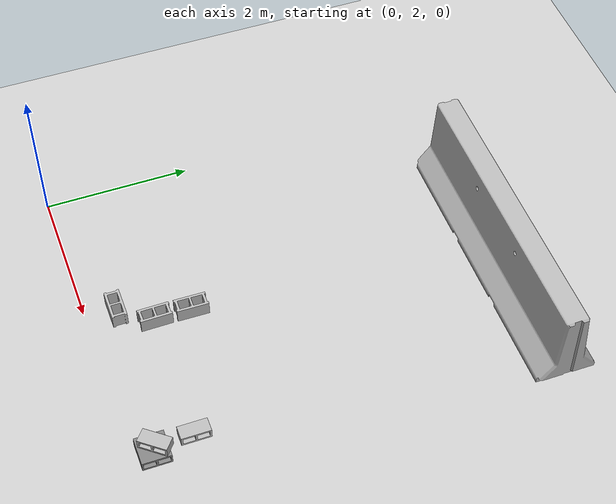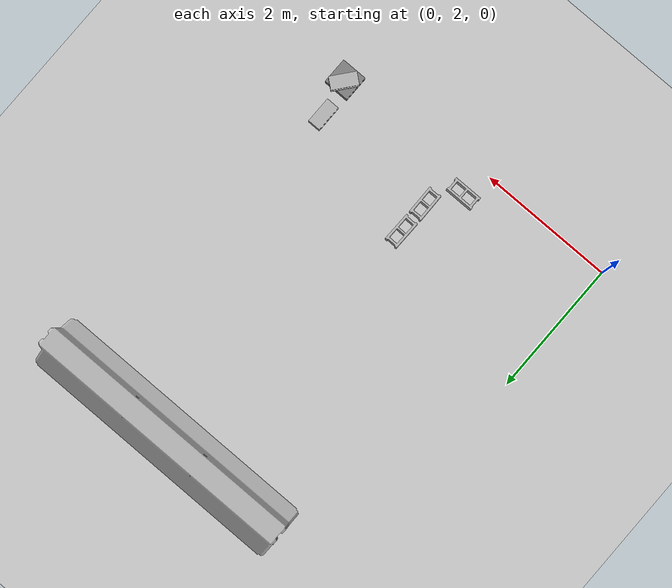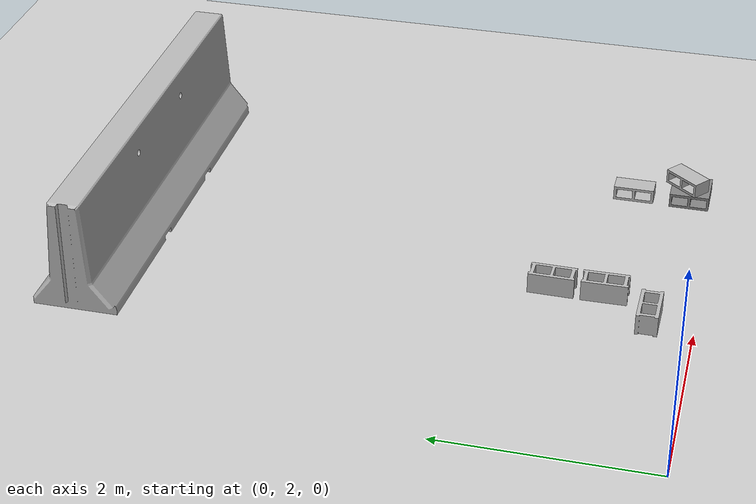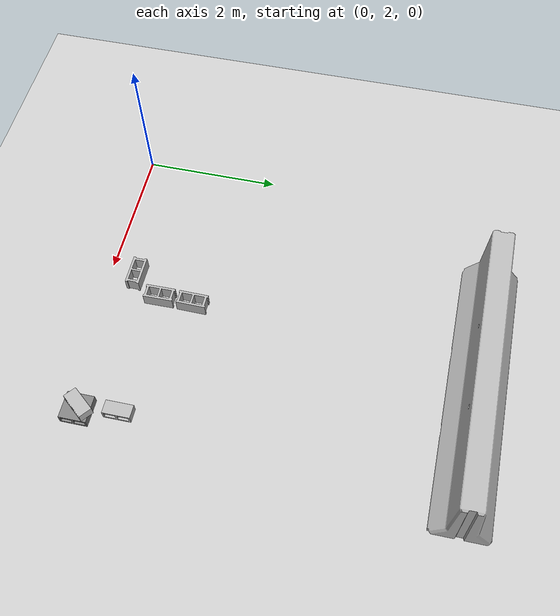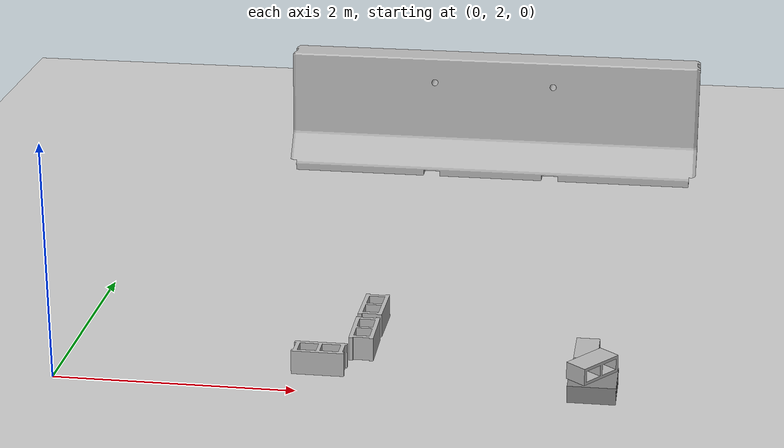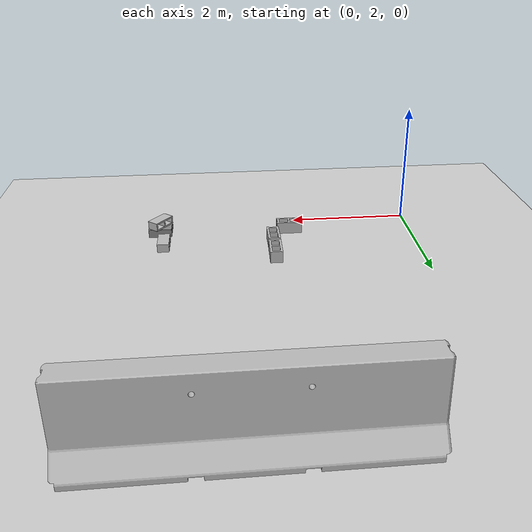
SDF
<sdf version="1.6">
 <world name="default">
  <model name="ground_plane">
   <static>1</static>
   <link name="link">
    <collision name="collision">
     <geometry><plane><normal>0 0 1</normal><size>100 100</size></plane></geometry>
     <surface>
      <contact><collide_bitmask>65535</collide_bitmask></contact>
      <friction><ode><mu>100</mu><mu2>50</mu2></ode></friction>
     </surface>
    </collision>
    <visual name="visual">
     <cast_shadows>0</cast_shadows>
     <geometry><plane><normal>0 0 1</normal><size>100 100</size></plane></geometry>
     <material>
      <script><uri>file://media/materials/scripts/gazebo.material</uri><name>Gazebo/Grey</name></script>
     </material>
    </visual>
   </link>
  </model>
  <model name="cinder_block">
   <link name="link">
    <inertial>
     <pose>0 0 0.1016 0 -0 0</pose>
     <mass>5</mass>
     <inertia>
      <ixx>0.028705</ixx>
      <ixy>0</ixy>
      <iyy>0.073708</iyy>
      <ixz>0</ixz>
      <iyz>0</iyz>
      <izz>0.06908</izz>
     </inertia>
    </inertial>
    <visual name="visual">
     <geometry><mesh><uri>model://cinder_block/meshes/cinder_block.dae</uri></mesh></geometry>
    </visual>
    <collision name="left">
     <pose>0 -0.08465 0.1016 0 -0 0</pose>
     <geometry><box><size>0.43495 0.0339 0.2032</size></box></geometry>
     <surface>
      <contact><ode><max_vel>0.1</max_vel><min_depth>0.001</min_depth></ode></contact>
      <friction><ode><mu>1</mu><mu2>1</mu2></ode></friction>
     </surface>
    </collision>
    <collision name="right">
     <pose>0 0.08465 0.1016 0 -0 0</pose>
     <geometry><box><size>0.43495 0.0339 0.2032</size></box></geometry>
     <surface>
      <contact><ode><max_vel>0.1</max_vel><min_depth>0.001</min_depth></ode></contact>
      <friction><ode><mu>1</mu><mu2>1</mu2></ode></friction>
     </surface>
    </collision>
    <collision name="front">
     <pose>0.18625 0 0.1016 0 -0 0</pose>
     <geometry><box><size>0.0339 0.1354 0.203</size></box></geometry>
     <surface>
      <contact><ode><max_vel>0.1</max_vel><min_depth>0.001</min_depth></ode></contact>
      <friction><ode><mu>1</mu><mu2>1</mu2></ode></friction>
     </surface>
    </collision>
    <collision name="middle">
     <pose>0 0 0.1016 0 -0 0</pose>
     <geometry><box><size>0.0339 0.1354 0.203</size></box></geometry>
     <surface>
      <contact><ode><max_vel>0.1</max_vel><min_depth>0.001</min_depth></ode></contact>
      <friction><ode><mu>1</mu><mu2>1</mu2></ode></friction>
     </surface>
    </collision>
    <collision name="back">
     <pose>-0.18625 0 0.1016 0 -0 0</pose>
     <geometry><box><size>0.0339 0.1354 0.203</size></box></geometry>
     <surface>
      <contact><ode><max_vel>0.1</max_vel><min_depth>0.001</min_depth></ode></contact>
      <friction><ode><mu>1</mu><mu2>1</mu2></ode></friction>
     </surface>
    </collision>
   </link>
   <pose>2.12256 2.41856 -1.2e-05 2.2e-05 2e-06 0</pose>
  </model>
  <model name="cinder_block_4">
   <link name="link">
    <inertial>
     <pose>0 0 0.1016 0 -0 0</pose>
     <mass>5</mass>
     <inertia>
      <ixx>0.028705</ixx>
      <ixy>0</ixy>
      <iyy>0.073708</iyy>
      <ixz>0</ixz>
      <iyz>0</iyz>
      <izz>0.06908</izz>
     </inertia>
    </inertial>
    <visual name="visual">
     <geometry><mesh><uri>model://cinder_block/meshes/cinder_block.dae</uri></mesh></geometry>
    </visual>
    <collision name="left">
     <pose>0 -0.08465 0.1016 0 -0 0</pose>
     <geometry><box><size>0.43495 0.0339 0.2032</size></box></geometry>
     <surface>
      <contact><ode><max_vel>0.1</max_vel><min_depth>0.001</min_depth></ode></contact>
      <friction><ode><mu>1</mu><mu2>1</mu2></ode></friction>
     </surface>
    </collision>
    <collision name="right">
     <pose>0 0.08465 0.1016 0 -0 0</pose>
     <geometry><box><size>0.43495 0.0339 0.2032</size></box></geometry>
     <surface>
      <contact><ode><max_vel>0.1</max_vel><min_depth>0.001</min_depth></ode></contact>
      <friction><ode><mu>1</mu><mu2>1</mu2></ode></friction>
     </surface>
    </collision>
    <collision name="front">
     <pose>0.18625 0 0.1016 0 -0 0</pose>
     <geometry><box><size>0.0339 0.1354 0.203</size></box></geometry>
     <surface>
      <contact><ode><max_vel>0.1</max_vel><min_depth>0.001</min_depth></ode></contact>
      <friction><ode><mu>1</mu><mu2>1</mu2></ode></friction>
     </surface>
    </collision>
    <collision name="middle">
     <pose>0 0 0.1016 0 -0 0</pose>
     <geometry><box><size>0.0339 0.1354 0.203</size></box></geometry>
     <surface>
      <contact><ode><max_vel>0.1</max_vel><min_depth>0.001</min_depth></ode></contact>
      <friction><ode><mu>1</mu><mu2>1</mu2></ode></friction>
     </surface>
    </collision>
    <collision name="back">
     <pose>-0.18625 0 0.1016 0 -0 0</pose>
     <geometry><box><size>0.0339 0.1354 0.203</size></box></geometry>
     <surface>
      <contact><ode><max_vel>0.1</max_vel><min_depth>0.001</min_depth></ode></contact>
      <friction><ode><mu>1</mu><mu2>1</mu2></ode></friction>
     </surface>
    </collision>
   </link>
   <pose>2.42783 2.86197 -6e-06 5.1e-05 4e-06 1.58286</pose>
  </model>
  <model name="cinder_block_6">
   <link name="link">
    <inertial>
     <pose>0 0 0.1016 0 -0 0</pose>
     <mass>5</mass>
     <inertia>
      <ixx>0.028705</ixx>
      <ixy>0</ixy>
      <iyy>0.073708</iyy>
      <ixz>0</ixz>
      <iyz>0</iyz>
      <izz>0.06908</izz>
     </inertia>
    </inertial>
    <visual name="visual">
     <geometry><mesh><uri>model://cinder_block/meshes/cinder_block.dae</uri></mesh></geometry>
    </visual>
    <collision name="left">
     <pose>0 -0.08465 0.1016 0 -0 0</pose>
     <geometry><box><size>0.43495 0.0339 0.2032</size></box></geometry>
     <surface>
      <contact><ode><max_vel>0.1</max_vel><min_depth>0.001</min_depth></ode></contact>
      <friction><ode><mu>1</mu><mu2>1</mu2></ode></friction>
     </surface>
    </collision>
    <collision name="right">
     <pose>0 0.08465 0.1016 0 -0 0</pose>
     <geometry><box><size>0.43495 0.0339 0.2032</size></box></geometry>
     <surface>
      <contact><ode><max_vel>0.1</max_vel><min_depth>0.001</min_depth></ode></contact>
      <friction><ode><mu>1</mu><mu2>1</mu2></ode></friction>
     </surface>
    </collision>
    <collision name="front">
     <pose>0.18625 0 0.1016 0 -0 0</pose>
     <geometry><box><size>0.0339 0.1354 0.203</size></box></geometry>
     <surface>
      <contact><ode><max_vel>0.1</max_vel><min_depth>0.001</min_depth></ode></contact>
      <friction><ode><mu>1</mu><mu2>1</mu2></ode></friction>
     </surface>
    </collision>
    <collision name="middle">
     <pose>0 0 0.1016 0 -0 0</pose>
     <geometry><box><size>0.0339 0.1354 0.203</size></box></geometry>
     <surface>
      <contact><ode><max_vel>0.1</max_vel><min_depth>0.001</min_depth></ode></contact>
      <friction><ode><mu>1</mu><mu2>1</mu2></ode></friction>
     </surface>
    </collision>
    <collision name="back">
     <pose>-0.18625 0 0.1016 0 -0 0</pose>
     <geometry><box><size>0.0339 0.1354 0.203</size></box></geometry>
     <surface>
      <contact><ode><max_vel>0.1</max_vel><min_depth>0.001</min_depth></ode></contact>
      <friction><ode><mu>1</mu><mu2>1</mu2></ode></friction>
     </surface>
    </collision>
   </link>
   <pose>2.43138 3.356 -6e-06 5.1e-05 4e-06 1.55629</pose>
  </model>
  <model name="cinder_block_2_static">
   <link name="link">
    <inertial>
     <pose>0 0 0.071438 0 -0 0</pose>
     <mass>5</mass>
     <inertia>
      <ixx>0.06908</ixx>
      <ixy>0</ixy>
      <iyy>0.028705</iyy>
      <ixz>0</ixz>
      <iyz>0</iyz>
      <izz>0.073708</izz>
     </inertia>
    </inertial>
    <visual name="visual">
     <geometry><mesh><uri>model://cinder_block_2/meshes/cinder_block.dae</uri></mesh></geometry>
    </visual>
    <collision name="top">
     <pose>0 0 0.130175 0 -0 0</pose>
     <geometry><box><size>0.19368 0.396875 0.0254</size></box></geometry>
     <surface>
      <friction>
       <ode><mu>1</mu><mu2>1</mu2><fdir1>0 0 0</fdir1><slip1>0</slip1><slip2>0</slip2></ode>
       <torsional>
        <coefficient>1</coefficient>
        <patch_radius>0</patch_radius>
        <surface_radius>0</surface_radius>
        <use_patch_radius>1</use_patch_radius>
        <ode><slip>0</slip></ode>
       </torsional>
      </friction>
      <bounce><restitution_coefficient>0</restitution_coefficient><threshold>1e+06</threshold></bounce>
      <contact>
       <collide_without_contact>0</collide_without_contact>
       <collide_without_contact_bitmask>1</collide_without_contact_bitmask>
       <collide_bitmask>1</collide_bitmask>
       <ode>
        <soft_cfm>0</soft_cfm>
        <soft_erp>0.2</soft_erp>
        <kp>1e+13</kp>
        <kd>1</kd>
        <max_vel>0.1</max_vel>
        <min_depth>0.001</min_depth>
       </ode>
       <bullet>
        <split_impulse>1</split_impulse>
        <split_impulse_penetration_threshold>-0.01</split_impulse_penetration_threshold>
        <soft_cfm>0</soft_cfm>
        <soft_erp>0.2</soft_erp>
        <kp>1e+13</kp>
        <kd>1</kd>
       </bullet>
      </contact>
     </surface>
    </collision>
    <collision name="bottom">
     <pose>0 0 0.0127 0 -0 0</pose>
     <geometry><box><size>0.19368 0.396875 0.0254</size></box></geometry>
     <surface>
      <friction>
       <ode><mu>1</mu><mu2>1</mu2><fdir1>0 0 0</fdir1><slip1>0</slip1><slip2>0</slip2></ode>
       <torsional>
        <coefficient>1</coefficient>
        <patch_radius>0</patch_radius>
        <surface_radius>0</surface_radius>
        <use_patch_radius>1</use_patch_radius>
        <ode><slip>0</slip></ode>
       </torsional>
      </friction>
      <bounce><restitution_coefficient>0</restitution_coefficient><threshold>1e+06</threshold></bounce>
      <contact>
       <collide_without_contact>0</collide_without_contact>
       <collide_without_contact_bitmask>1</collide_without_contact_bitmask>
       <collide_bitmask>1</collide_bitmask>
       <ode>
        <soft_cfm>0</soft_cfm>
        <soft_erp>0.2</soft_erp>
        <kp>1e+13</kp>
        <kd>1</kd>
        <max_vel>0.1</max_vel>
        <min_depth>0.001</min_depth>
       </ode>
       <bullet>
        <split_impulse>1</split_impulse>
        <split_impulse_penetration_threshold>-0.01</split_impulse_penetration_threshold>
        <soft_cfm>0</soft_cfm>
        <soft_erp>0.2</soft_erp>
        <kp>1e+13</kp>
        <kd>1</kd>
       </bullet>
      </contact>
     </surface>
    </collision>
    <collision name="left">
     <pose>0 -0.185738 0.071438 0 -0 0</pose>
     <geometry><box><size>0.19368 0.0254 0.092075</size></box></geometry>
     <surface>
      <friction>
       <ode><mu>1</mu><mu2>1</mu2><fdir1>0 0 0</fdir1><slip1>0</slip1><slip2>0</slip2></ode>
       <torsional>
        <coefficient>1</coefficient>
        <patch_radius>0</patch_radius>
        <surface_radius>0</surface_radius>
        <use_patch_radius>1</use_patch_radius>
        <ode><slip>0</slip></ode>
       </torsional>
      </friction>
      <bounce><restitution_coefficient>0</restitution_coefficient><threshold>1e+06</threshold></bounce>
      <contact>
       <collide_without_contact>0</collide_without_contact>
       <collide_without_contact_bitmask>1</collide_without_contact_bitmask>
       <collide_bitmask>1</collide_bitmask>
       <ode>
        <soft_cfm>0</soft_cfm>
        <soft_erp>0.2</soft_erp>
        <kp>1e+13</kp>
        <kd>1</kd>
        <max_vel>0.1</max_vel>
        <min_depth>0.001</min_depth>
       </ode>
       <bullet>
        <split_impulse>1</split_impulse>
        <split_impulse_penetration_threshold>-0.01</split_impulse_penetration_threshold>
        <soft_cfm>0</soft_cfm>
        <soft_erp>0.2</soft_erp>
        <kp>1e+13</kp>
        <kd>1</kd>
       </bullet>
      </contact>
     </surface>
    </collision>
    <collision name="middle">
     <pose>0 0 0.071438 0 -0 0</pose>
     <geometry><box><size>0.19368 0.0254 0.092075</size></box></geometry>
     <surface>
      <friction>
       <ode><mu>1</mu><mu2>1</mu2><fdir1>0 0 0</fdir1><slip1>0</slip1><slip2>0</slip2></ode>
       <torsional>
        <coefficient>1</coefficient>
        <patch_radius>0</patch_radius>
        <surface_radius>0</surface_radius>
        <use_patch_radius>1</use_patch_radius>
        <ode><slip>0</slip></ode>
       </torsional>
      </friction>
      <bounce><restitution_coefficient>0</restitution_coefficient><threshold>1e+06</threshold></bounce>
      <contact>
       <collide_without_contact>0</collide_without_contact>
       <collide_without_contact_bitmask>1</collide_without_contact_bitmask>
       <collide_bitmask>1</collide_bitmask>
       <ode>
        <soft_cfm>0</soft_cfm>
        <soft_erp>0.2</soft_erp>
        <kp>1e+13</kp>
        <kd>1</kd>
        <max_vel>0.1</max_vel>
        <min_depth>0.001</min_depth>
       </ode>
       <bullet>
        <split_impulse>1</split_impulse>
        <split_impulse_penetration_threshold>-0.01</split_impulse_penetration_threshold>
        <soft_cfm>0</soft_cfm>
        <soft_erp>0.2</soft_erp>
        <kp>1e+13</kp>
        <kd>1</kd>
       </bullet>
      </contact>
     </surface>
    </collision>
    <collision name="right">
     <pose>0 0.185738 0.071438 0 -0 0</pose>
     <geometry><box><size>0.19368 0.0254 0.092075</size></box></geometry>
     <surface>
      <friction>
       <ode><mu>1</mu><mu2>1</mu2><fdir1>0 0 0</fdir1><slip1>0</slip1><slip2>0</slip2></ode>
       <torsional>
        <coefficient>1</coefficient>
        <patch_radius>0</patch_radius>
        <surface_radius>0</surface_radius>
        <use_patch_radius>1</use_patch_radius>
        <ode><slip>0</slip></ode>
       </torsional>
      </friction>
      <bounce><restitution_coefficient>0</restitution_coefficient><threshold>1e+06</threshold></bounce>
      <contact>
       <collide_without_contact>0</collide_without_contact>
       <collide_without_contact_bitmask>1</collide_without_contact_bitmask>
       <collide_bitmask>1</collide_bitmask>
       <ode>
        <soft_cfm>0</soft_cfm>
        <soft_erp>0.2</soft_erp>
        <kp>1e+13</kp>
        <kd>1</kd>
        <max_vel>0.1</max_vel>
        <min_depth>0.001</min_depth>
       </ode>
       <bullet>
        <split_impulse>1</split_impulse>
        <split_impulse_penetration_threshold>-0.01</split_impulse_penetration_threshold>
        <soft_cfm>0</soft_cfm>
        <soft_erp>0.2</soft_erp>
        <kp>1e+13</kp>
        <kd>1</kd>
       </bullet>
      </contact>
     </surface>
    </collision>
   </link>
   <static>1</static>
   <pose>4.27578 2.8283 0 0 -0 0</pose>
  </model>
  <model name="cinder_block_wide_static_0">
   <link name="link">
    <inertial>
     <pose>0 0 0.071438 0 -0 0</pose>
     <mass>5</mass>
     <inertia>
      <ixx>0.0681466</ixx>
      <ixy>0</ixy>
      <iyy>0.0681466</iyy>
      <ixz>0</ixz>
      <iyz>0</iyz>
      <izz>0.124808</izz>
     </inertia>
    </inertial>
    <visual name="visual">
     <geometry><mesh><uri>model://cinder_block_wide/meshes/cinder_block_wide.dae</uri></mesh></geometry>
    </visual>
    <collision name="top">
     <pose>0 0 0.130175 0 -0 0</pose>
     <geometry><box><size>0.387354 0.387354 0.0254</size></box></geometry>
     <surface>
      <friction>
       <ode><mu>1</mu><mu2>1</mu2><fdir1>0 0 0</fdir1><slip1>0</slip1><slip2>0</slip2></ode>
       <torsional>
        <coefficient>1</coefficient>
        <patch_radius>0</patch_radius>
        <surface_radius>0</surface_radius>
        <use_patch_radius>1</use_patch_radius>
        <ode><slip>0</slip></ode>
       </torsional>
      </friction>
      <bounce><restitution_coefficient>0</restitution_coefficient><threshold>1e+06</threshold></bounce>
      <contact>
       <collide_without_contact>0</collide_without_contact>
       <collide_without_contact_bitmask>1</collide_without_contact_bitmask>
       <collide_bitmask>1</collide_bitmask>
       <ode>
        <soft_cfm>0</soft_cfm>
        <soft_erp>0.2</soft_erp>
        <kp>1e+13</kp>
        <kd>1</kd>
        <max_vel>0.1</max_vel>
        <min_depth>0.001</min_depth>
       </ode>
       <bullet>
        <split_impulse>1</split_impulse>
        <split_impulse_penetration_threshold>-0.01</split_impulse_penetration_threshold>
        <soft_cfm>0</soft_cfm>
        <soft_erp>0.2</soft_erp>
        <kp>1e+13</kp>
        <kd>1</kd>
       </bullet>
      </contact>
     </surface>
    </collision>
    <collision name="bottom">
     <pose>0 0 0.0127 0 -0 0</pose>
     <geometry><box><size>0.387354 0.387354 0.0254</size></box></geometry>
     <surface>
      <friction>
       <ode><mu>1</mu><mu2>1</mu2><fdir1>0 0 0</fdir1><slip1>0</slip1><slip2>0</slip2></ode>
       <torsional>
        <coefficient>1</coefficient>
        <patch_radius>0</patch_radius>
        <surface_radius>0</surface_radius>
        <use_patch_radius>1</use_patch_radius>
        <ode><slip>0</slip></ode>
       </torsional>
      </friction>
      <bounce><restitution_coefficient>0</restitution_coefficient><threshold>1e+06</threshold></bounce>
      <contact>
       <collide_without_contact>0</collide_without_contact>
       <collide_without_contact_bitmask>1</collide_without_contact_bitmask>
       <collide_bitmask>1</collide_bitmask>
       <ode>
        <soft_cfm>0</soft_cfm>
        <soft_erp>0.2</soft_erp>
        <kp>1e+13</kp>
        <kd>1</kd>
        <max_vel>0.1</max_vel>
        <min_depth>0.001</min_depth>
       </ode>
       <bullet>
        <split_impulse>1</split_impulse>
        <split_impulse_penetration_threshold>-0.01</split_impulse_penetration_threshold>
        <soft_cfm>0</soft_cfm>
        <soft_erp>0.2</soft_erp>
        <kp>1e+13</kp>
        <kd>1</kd>
       </bullet>
      </contact>
     </surface>
    </collision>
    <collision name="left">
     <pose>0 -0.183355 0.071438 0 -0 0</pose>
     <geometry><box><size>0.387354 0.020643 0.092075</size></box></geometry>
     <surface>
      <friction>
       <ode><mu>1</mu><mu2>1</mu2><fdir1>0 0 0</fdir1><slip1>0</slip1><slip2>0</slip2></ode>
       <torsional>
        <coefficient>1</coefficient>
        <patch_radius>0</patch_radius>
        <surface_radius>0</surface_radius>
        <use_patch_radius>1</use_patch_radius>
        <ode><slip>0</slip></ode>
       </torsional>
      </friction>
      <bounce><restitution_coefficient>0</restitution_coefficient><threshold>1e+06</threshold></bounce>
      <contact>
       <collide_without_contact>0</collide_without_contact>
       <collide_without_contact_bitmask>1</collide_without_contact_bitmask>
       <collide_bitmask>1</collide_bitmask>
       <ode>
        <soft_cfm>0</soft_cfm>
        <soft_erp>0.2</soft_erp>
        <kp>1e+13</kp>
        <kd>1</kd>
        <max_vel>0.1</max_vel>
        <min_depth>0.001</min_depth>
       </ode>
       <bullet>
        <split_impulse>1</split_impulse>
        <split_impulse_penetration_threshold>-0.01</split_impulse_penetration_threshold>
        <soft_cfm>0</soft_cfm>
        <soft_erp>0.2</soft_erp>
        <kp>1e+13</kp>
        <kd>1</kd>
       </bullet>
      </contact>
     </surface>
    </collision>
    <collision name="right">
     <pose>0 0.183355 0.071438 0 -0 0</pose>
     <geometry><box><size>0.387354 0.020643 0.092075</size></box></geometry>
     <surface>
      <friction>
       <ode><mu>1</mu><mu2>1</mu2><fdir1>0 0 0</fdir1><slip1>0</slip1><slip2>0</slip2></ode>
       <torsional>
        <coefficient>1</coefficient>
        <patch_radius>0</patch_radius>
        <surface_radius>0</surface_radius>
        <use_patch_radius>1</use_patch_radius>
        <ode><slip>0</slip></ode>
       </torsional>
      </friction>
      <bounce><restitution_coefficient>0</restitution_coefficient><threshold>1e+06</threshold></bounce>
      <contact>
       <collide_without_contact>0</collide_without_contact>
       <collide_without_contact_bitmask>1</collide_without_contact_bitmask>
       <collide_bitmask>1</collide_bitmask>
       <ode>
        <soft_cfm>0</soft_cfm>
        <soft_erp>0.2</soft_erp>
        <kp>1e+13</kp>
        <kd>1</kd>
        <max_vel>0.1</max_vel>
        <min_depth>0.001</min_depth>
       </ode>
       <bullet>
        <split_impulse>1</split_impulse>
        <split_impulse_penetration_threshold>-0.01</split_impulse_penetration_threshold>
        <soft_cfm>0</soft_cfm>
        <soft_erp>0.2</soft_erp>
        <kp>1e+13</kp>
        <kd>1</kd>
       </bullet>
      </contact>
     </surface>
    </collision>
    <collision name="middle">
     <pose>0 0 0.071438 0 -0 0</pose>
     <geometry><box><size>0.387354 0.0254 0.092075</size></box></geometry>
     <surface>
      <friction>
       <ode><mu>1</mu><mu2>1</mu2><fdir1>0 0 0</fdir1><slip1>0</slip1><slip2>0</slip2></ode>
       <torsional>
        <coefficient>1</coefficient>
        <patch_radius>0</patch_radius>
        <surface_radius>0</surface_radius>
        <use_patch_radius>1</use_patch_radius>
        <ode><slip>0</slip></ode>
       </torsional>
      </friction>
      <bounce><restitution_coefficient>0</restitution_coefficient><threshold>1e+06</threshold></bounce>
      <contact>
       <collide_without_contact>0</collide_without_contact>
       <collide_without_contact_bitmask>1</collide_without_contact_bitmask>
       <collide_bitmask>1</collide_bitmask>
       <ode>
        <soft_cfm>0</soft_cfm>
        <soft_erp>0.2</soft_erp>
        <kp>1e+13</kp>
        <kd>1</kd>
        <max_vel>0.1</max_vel>
        <min_depth>0.001</min_depth>
       </ode>
       <bullet>
        <split_impulse>1</split_impulse>
        <split_impulse_penetration_threshold>-0.01</split_impulse_penetration_threshold>
        <soft_cfm>0</soft_cfm>
        <soft_erp>0.2</soft_erp>
        <kp>1e+13</kp>
        <kd>1</kd>
       </bullet>
      </contact>
     </surface>
    </collision>
   </link>
   <static>1</static>
   <pose>4.35947 2.27459 0 0 -0 0</pose>
  </model>
  <model name="cinder_block_2_static_1">
   <link name="link">
    <inertial>
     <pose>0 0 0.071438 0 -0 0</pose>
     <mass>5</mass>
     <inertia>
      <ixx>0.06908</ixx>
      <ixy>0</ixy>
      <iyy>0.028705</iyy>
      <ixz>0</ixz>
      <iyz>0</iyz>
      <izz>0.073708</izz>
     </inertia>
    </inertial>
    <visual name="visual">
     <geometry><mesh><uri>model://cinder_block_2/meshes/cinder_block.dae</uri></mesh></geometry>
    </visual>
    <collision name="top">
     <pose>0 0 0.130175 0 -0 0</pose>
     <geometry><box><size>0.19368 0.396875 0.0254</size></box></geometry>
     <surface>
      <friction>
       <ode><mu>1</mu><mu2>1</mu2><fdir1>0 0 0</fdir1><slip1>0</slip1><slip2>0</slip2></ode>
       <torsional>
        <coefficient>1</coefficient>
        <patch_radius>0</patch_radius>
        <surface_radius>0</surface_radius>
        <use_patch_radius>1</use_patch_radius>
        <ode><slip>0</slip></ode>
       </torsional>
      </friction>
      <bounce><restitution_coefficient>0</restitution_coefficient><threshold>1e+06</threshold></bounce>
      <contact>
       <collide_without_contact>0</collide_without_contact>
       <collide_without_contact_bitmask>1</collide_without_contact_bitmask>
       <collide_bitmask>1</collide_bitmask>
       <ode>
        <soft_cfm>0</soft_cfm>
        <soft_erp>0.2</soft_erp>
        <kp>1e+13</kp>
        <kd>1</kd>
        <max_vel>0.1</max_vel>
        <min_depth>0.001</min_depth>
       </ode>
       <bullet>
        <split_impulse>1</split_impulse>
        <split_impulse_penetration_threshold>-0.01</split_impulse_penetration_threshold>
        <soft_cfm>0</soft_cfm>
        <soft_erp>0.2</soft_erp>
        <kp>1e+13</kp>
        <kd>1</kd>
       </bullet>
      </contact>
     </surface>
    </collision>
    <collision name="bottom">
     <pose>0 0 0.0127 0 -0 0</pose>
     <geometry><box><size>0.19368 0.396875 0.0254</size></box></geometry>
     <surface>
      <friction>
       <ode><mu>1</mu><mu2>1</mu2><fdir1>0 0 0</fdir1><slip1>0</slip1><slip2>0</slip2></ode>
       <torsional>
        <coefficient>1</coefficient>
        <patch_radius>0</patch_radius>
        <surface_radius>0</surface_radius>
        <use_patch_radius>1</use_patch_radius>
        <ode><slip>0</slip></ode>
       </torsional>
      </friction>
      <bounce><restitution_coefficient>0</restitution_coefficient><threshold>1e+06</threshold></bounce>
      <contact>
       <collide_without_contact>0</collide_without_contact>
       <collide_without_contact_bitmask>1</collide_without_contact_bitmask>
       <collide_bitmask>1</collide_bitmask>
       <ode>
        <soft_cfm>0</soft_cfm>
        <soft_erp>0.2</soft_erp>
        <kp>1e+13</kp>
        <kd>1</kd>
        <max_vel>0.1</max_vel>
        <min_depth>0.001</min_depth>
       </ode>
       <bullet>
        <split_impulse>1</split_impulse>
        <split_impulse_penetration_threshold>-0.01</split_impulse_penetration_threshold>
        <soft_cfm>0</soft_cfm>
        <soft_erp>0.2</soft_erp>
        <kp>1e+13</kp>
        <kd>1</kd>
       </bullet>
      </contact>
     </surface>
    </collision>
    <collision name="left">
     <pose>0 -0.185738 0.071438 0 -0 0</pose>
     <geometry><box><size>0.19368 0.0254 0.092075</size></box></geometry>
     <surface>
      <friction>
       <ode><mu>1</mu><mu2>1</mu2><fdir1>0 0 0</fdir1><slip1>0</slip1><slip2>0</slip2></ode>
       <torsional>
        <coefficient>1</coefficient>
        <patch_radius>0</patch_radius>
        <surface_radius>0</surface_radius>
        <use_patch_radius>1</use_patch_radius>
        <ode><slip>0</slip></ode>
       </torsional>
      </friction>
      <bounce><restitution_coefficient>0</restitution_coefficient><threshold>1e+06</threshold></bounce>
      <contact>
       <collide_without_contact>0</collide_without_contact>
       <collide_without_contact_bitmask>1</collide_without_contact_bitmask>
       <collide_bitmask>1</collide_bitmask>
       <ode>
        <soft_cfm>0</soft_cfm>
        <soft_erp>0.2</soft_erp>
        <kp>1e+13</kp>
        <kd>1</kd>
        <max_vel>0.1</max_vel>
        <min_depth>0.001</min_depth>
       </ode>
       <bullet>
        <split_impulse>1</split_impulse>
        <split_impulse_penetration_threshold>-0.01</split_impulse_penetration_threshold>
        <soft_cfm>0</soft_cfm>
        <soft_erp>0.2</soft_erp>
        <kp>1e+13</kp>
        <kd>1</kd>
       </bullet>
      </contact>
     </surface>
    </collision>
    <collision name="middle">
     <pose>0 0 0.071438 0 -0 0</pose>
     <geometry><box><size>0.19368 0.0254 0.092075</size></box></geometry>
     <surface>
      <friction>
       <ode><mu>1</mu><mu2>1</mu2><fdir1>0 0 0</fdir1><slip1>0</slip1><slip2>0</slip2></ode>
       <torsional>
        <coefficient>1</coefficient>
        <patch_radius>0</patch_radius>
        <surface_radius>0</surface_radius>
        <use_patch_radius>1</use_patch_radius>
        <ode><slip>0</slip></ode>
       </torsional>
      </friction>
      <bounce><restitution_coefficient>0</restitution_coefficient><threshold>1e+06</threshold></bounce>
      <contact>
       <collide_without_contact>0</collide_without_contact>
       <collide_without_contact_bitmask>1</collide_without_contact_bitmask>
       <collide_bitmask>1</collide_bitmask>
       <ode>
        <soft_cfm>0</soft_cfm>
        <soft_erp>0.2</soft_erp>
        <kp>1e+13</kp>
        <kd>1</kd>
        <max_vel>0.1</max_vel>
        <min_depth>0.001</min_depth>
       </ode>
       <bullet>
        <split_impulse>1</split_impulse>
        <split_impulse_penetration_threshold>-0.01</split_impulse_penetration_threshold>
        <soft_cfm>0</soft_cfm>
        <soft_erp>0.2</soft_erp>
        <kp>1e+13</kp>
        <kd>1</kd>
       </bullet>
      </contact>
     </surface>
    </collision>
    <collision name="right">
     <pose>0 0.185738 0.071438 0 -0 0</pose>
     <geometry><box><size>0.19368 0.0254 0.092075</size></box></geometry>
     <surface>
      <friction>
       <ode><mu>1</mu><mu2>1</mu2><fdir1>0 0 0</fdir1><slip1>0</slip1><slip2>0</slip2></ode>
       <torsional>
        <coefficient>1</coefficient>
        <patch_radius>0</patch_radius>
        <surface_radius>0</surface_radius>
        <use_patch_radius>1</use_patch_radius>
        <ode><slip>0</slip></ode>
       </torsional>
      </friction>
      <bounce><restitution_coefficient>0</restitution_coefficient><threshold>1e+06</threshold></bounce>
      <contact>
       <collide_without_contact>0</collide_without_contact>
       <collide_without_contact_bitmask>1</collide_without_contact_bitmask>
       <collide_bitmask>1</collide_bitmask>
       <ode>
        <soft_cfm>0</soft_cfm>
        <soft_erp>0.2</soft_erp>
        <kp>1e+13</kp>
        <kd>1</kd>
        <max_vel>0.1</max_vel>
        <min_depth>0.001</min_depth>
       </ode>
       <bullet>
        <split_impulse>1</split_impulse>
        <split_impulse_penetration_threshold>-0.01</split_impulse_penetration_threshold>
        <soft_cfm>0</soft_cfm>
        <soft_erp>0.2</soft_erp>
        <kp>1e+13</kp>
        <kd>1</kd>
       </bullet>
      </contact>
     </surface>
    </collision>
   </link>
   <static>1</static>
   <pose>4.3502 2.31532 0.143666 0 0 -0.679225</pose>
  </model>
  <model name="jersey_barrier_1">
   <static>1</static>
   <link name="link">
    <visual name="visual">
     <geometry><mesh><uri>model://jersey_barrier/meshes/jersey_barrier.dae</uri></mesh></geometry>
    </visual>
    <collision name="upright">
     <pose>0 0 0.5715 0 -0 0</pose>
     <geometry><box><size>4.06542 0.3063 1.143</size></box></geometry>
    </collision>
    <collision name="base">
     <pose>0 0 0.032258 0 -0 0</pose>
     <geometry><box><size>4.06542 0.8107 0.064516</size></box></geometry>
    </collision>
    <collision name="base2">
     <pose>0 0 0.1 0 -0 0</pose>
     <geometry><box><size>4.06542 0.65 0.1</size></box></geometry>
    </collision>
    <collision name="base3">
     <pose>0 0 0.2 0 -0 0</pose>
     <geometry><box><size>4.06542 0.5 0.1</size></box></geometry>
    </collision>
    <collision name="left-angle">
     <pose>0 -0.224 0.2401 0.9 -0 0</pose>
     <geometry><box><size>4.06542 0.5 0.064516</size></box></geometry>
    </collision>
    <collision name="right-angle">
     <pose>0 0.224 0.2401 -0.9 0 0</pose>
     <geometry><box><size>4.06542 0.5 0.064516</size></box></geometry>
    </collision>
   </link>
   <pose>3.03202 7.53417 0 0 -0 0</pose>
  </model>
 </world>
</sdf>
